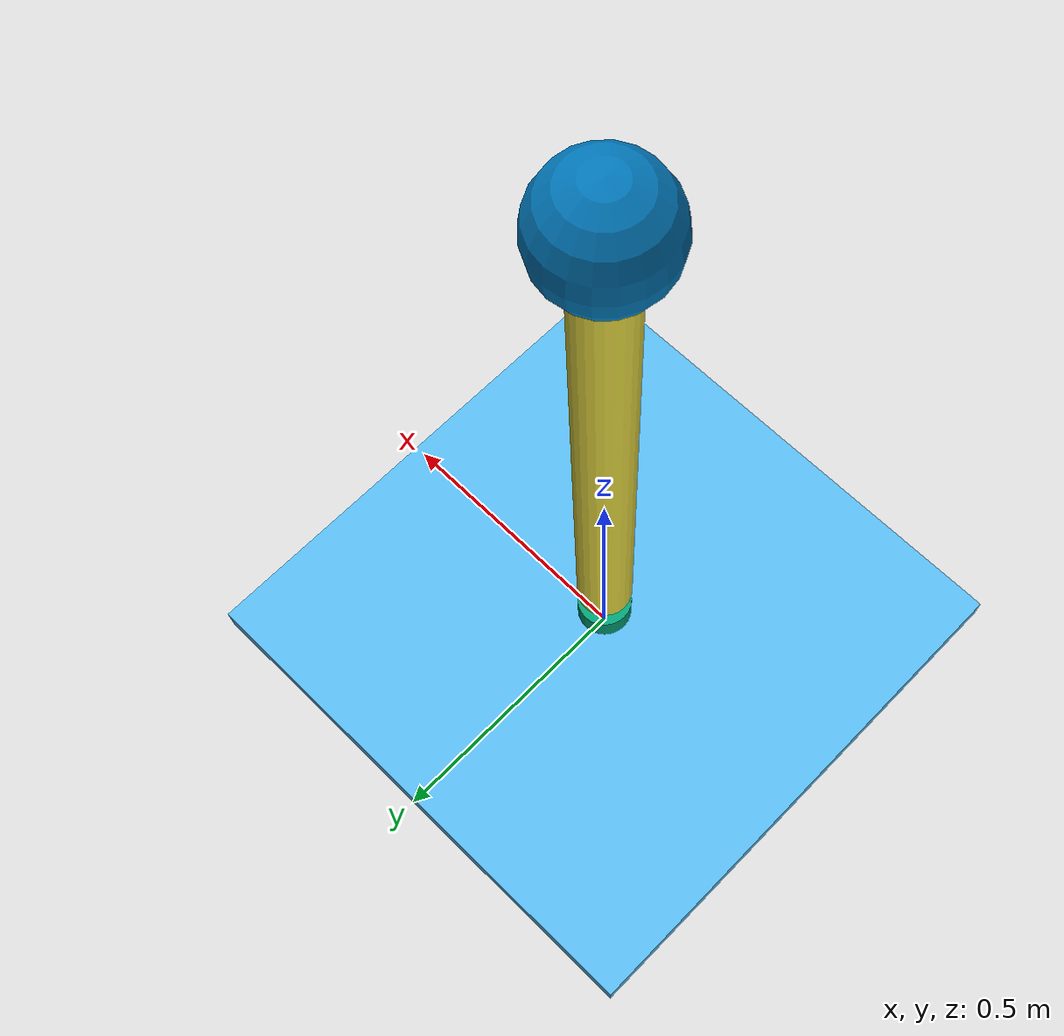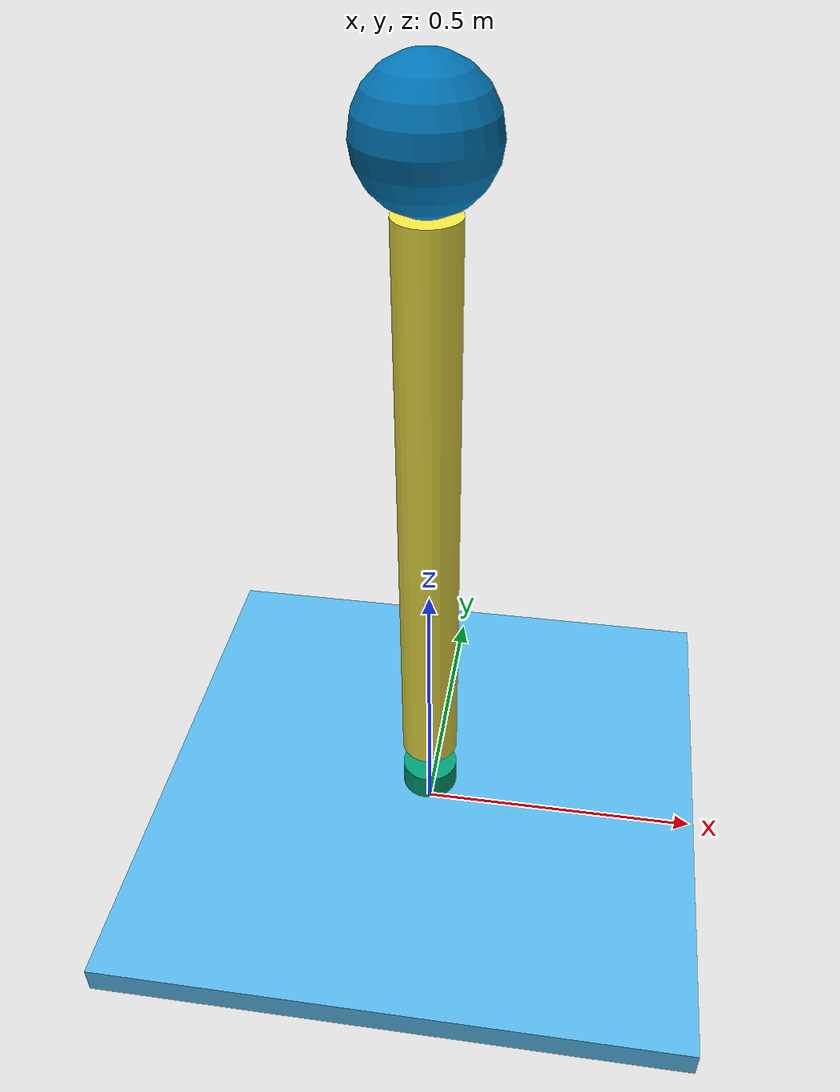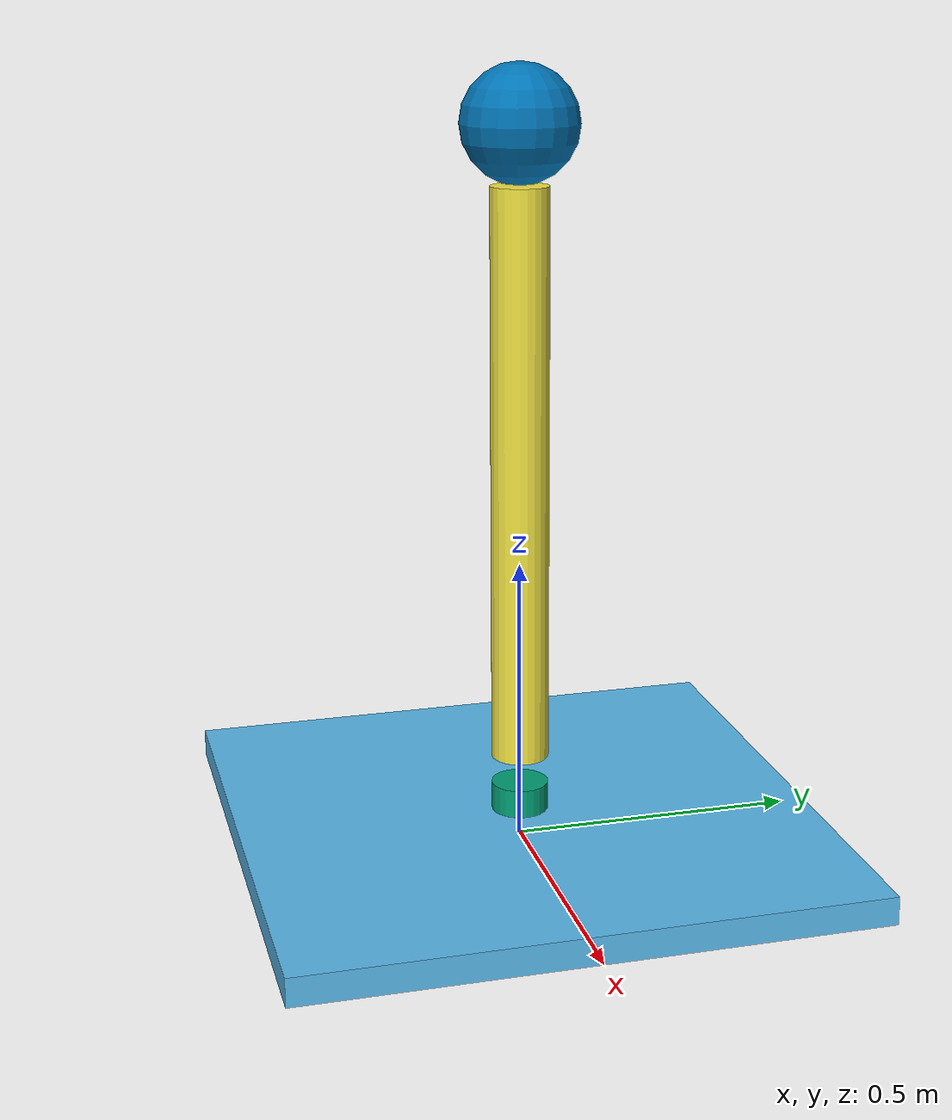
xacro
<?xml version="1.0" ?>
<robot name="pole" xmlns:xacro="http://www.ros.org/wiki/xacro">

  <!-- BGN - Include -->
  <xacro:include filename="$(find dynamic_rl)/urdf/functions.xacro" />
  <!-- END - Include -->

  <!-- BGN - Robot description -->

  <link name="world"/>

  <joint name="fixed" type="fixed">
  	<parent link="world"/>
    <child link="base_link"/>
  </joint>

  <m_link_box name="base_link"
              origin_rpy="0 0 0" origin_xyz="0 0 0.025"
              mass="10"
              ixx="1" ixy="0" ixz="0"
              iyy="1" iyz="0"
              izz="1"
              size="1 1 0.05" />

  <m_joint name="joint1" type="revolute"
           axis_xyz="0 0 1"
           origin_rpy="0 0 0" origin_xyz="0 0 0.1"
           parent="base_link" child="link2"
           limit_e="20" limit_l="-3.14" limit_u="3.14" limit_v="0.5"
           />

  <m_link_cylinder name="link2"
              origin_rpy="0 0 0" origin_xyz="0 0 -0.025"
              mass="0.05"
              ixx="0.00004" ixy="0" ixz="0"
              iyy="0.00004" iyz="0"
              izz="0.00003"
              radius="0.05" length="0.05"
              />

  <m_joint name="joint2" type="revolute"
           axis_xyz="0 1 0"
           origin_rpy="0 0 0" origin_xyz="0 0 0"
           parent="link2" child="link3"
           limit_e="20" limit_l="-1.57" limit_u="1.57" limit_v="0.5"
           />

  <m_link_cylinder name="link3"
              origin_rpy="0 0 0" origin_xyz="0 0 0.55"
              mass="0.1"
              ixx="0.0042" ixy="0" ixz="0"
              iyy="0.0042" iyz="0"
              izz="0.00003"
              radius="0.05" length="1"
              />

  <joint name="end_joint" type="fixed">
    <axis xyz="0 0 0" />
    <origin rpy="0 0 0" xyz="0 0 1.15" />
    <parent link="link3" />
    <child link="end_link" />
  </joint>

  <m_link_sphere name="end_link"
              origin_rpy="0 0 0" origin_xyz="0 0 0"
              mass="1"
              ixx="0.04" ixy="0" ixz="0"
              iyy="0.04" iyz="0"
              izz="0.04"
              radius="0.1" />

  <gazebo>
    <plugin name="gazebo_ros_control" filename="libgazebo_ros_control.so">
    	<robotNamespace>/pole</robotNamespace>
    </plugin>
  </gazebo>

</robot>

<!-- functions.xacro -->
<robot xmlns:xacro="http://www.ros.org/wiki/xacro">

  <xacro:macro name="m_joint" params="name type axis_xyz origin_rpy origin_xyz parent child limit_e limit_l limit_u limit_v ">
    <joint name="${name}" type="${type}">
      <axis xyz="${axis_xyz}" />
      <limit effort="${limit_e}" lower="${limit_l}" upper="${limit_u}" velocity="${limit_v}" />
      <origin rpy="${origin_rpy}" xyz="${origin_xyz}" />
      <parent link="${parent}" />
      <child link="${child}" />
      <dynamics damping="8"/>
    </joint>
    <transmission name="trans_${name}">
      <type>transmission_interface/SimpleTransmission</type>
      <joint name="${name}">
        <hardwareInterface>hardware_interface/EffortJointInterface</hardwareInterface>
      </joint>
      <actuator name="motor_${name}">
        <mechanicalReduction>1</mechanicalReduction>
      </actuator>
    </transmission>
  </xacro:macro>

  <xacro:macro name="m_link_cylinder" params="name origin_xyz origin_rpy radius length mass ixx ixy ixz iyy iyz izz">
    <link name="${name}">
      <inertial>
        <mass value="${mass}" />
        <origin rpy="${origin_rpy}" xyz="${origin_xyz}" />
        <inertia ixx="${ixx}" ixy="${ixy}" ixz="${ixz}" iyy="${iyy}" iyz="${iyz}" izz="${izz}" />
      </inertial>
      <collision>
        <origin rpy="${origin_rpy}" xyz="${origin_xyz}" />
        <geometry>
          <cylinder radius="${radius}" length="${length}" />
        </geometry>
      </collision>
      <visual>
        <origin rpy="${origin_rpy}" xyz="${origin_xyz}" />
        <geometry>
          <cylinder radius="${radius}" length="${length}" />
        </geometry>
      </visual>
    </link>
  </xacro:macro>

  <xacro:macro name="m_link_box" params="name origin_xyz origin_rpy size mass ixx ixy ixz iyy iyz izz">
    <link name="${name}">
      <inertial>
        <mass value="${mass}" />
        <origin rpy="${origin_rpy}" xyz="${origin_xyz}" />
        <inertia ixx="${ixx}" ixy="${ixy}" ixz="${ixz}" iyy="${iyy}" iyz="${iyz}" izz="${izz}" />
      </inertial>
      <collision>
        <origin rpy="${origin_rpy}" xyz="${origin_xyz}" />
        <geometry>
          <box size="${size}" />
        </geometry>
      </collision>
      <visual>
        <origin rpy="${origin_rpy}" xyz="${origin_xyz}" />
        <geometry>
          <box size="${size}" />
        </geometry>
      </visual>
    </link>
  </xacro:macro>

  <xacro:macro name="m_link_mesh" params="name origin_xyz origin_rpy meshfile meshscale mass ixx ixy ixz iyy iyz izz">
    <link name="${name}">
      <inertial>
        <mass value="${mass}" />
        <origin rpy="${origin_rpy}" xyz="${origin_xyz}" />
        <inertia ixx="${ixx}" ixy="${ixy}" ixz="${ixz}" iyy="${iyy}" iyz="${iyz}" izz="${izz}" />
      </inertial>
      <collision>
        <origin rpy="${origin_rpy}" xyz="${origin_xyz}" />
        <geometry>
          <mesh filename="${meshfile}" scale="${meshscale}"/>
        </geometry>
      </collision>
      <visual>
        <origin rpy="${origin_rpy}" xyz="${origin_xyz}" />
        <geometry>
          <mesh filename="${meshfile}" scale="${meshscale}"/>
        </geometry>
        <material name="light_black"/>
      </visual>
    </link>
  </xacro:macro>

  <xacro:macro name="m_link_sphere" params="name origin_xyz origin_rpy radius mass ixx ixy ixz iyy iyz izz">
    <link name="${name}">
      <inertial>
        <mass value="${mass}" />
        <origin rpy="${origin_rpy}" xyz="${origin_xyz}" />
        <inertia ixx="${ixx}" ixy="${ixy}" ixz="${ixz}" iyy="${iyy}" iyz="${iyz}" izz="${izz}" />
      </inertial>
      <collision>
        <origin rpy="${origin_rpy}" xyz="${origin_xyz}" />
        <geometry>
          <sphere radius="${radius}" />
        </geometry>
      </collision>
      <visual>
        <origin rpy="${origin_rpy}" />
        <geometry>
          <sphere radius="${radius}" />
        </geometry>
      </visual>
    </link>
  </xacro:macro>

</robot>
